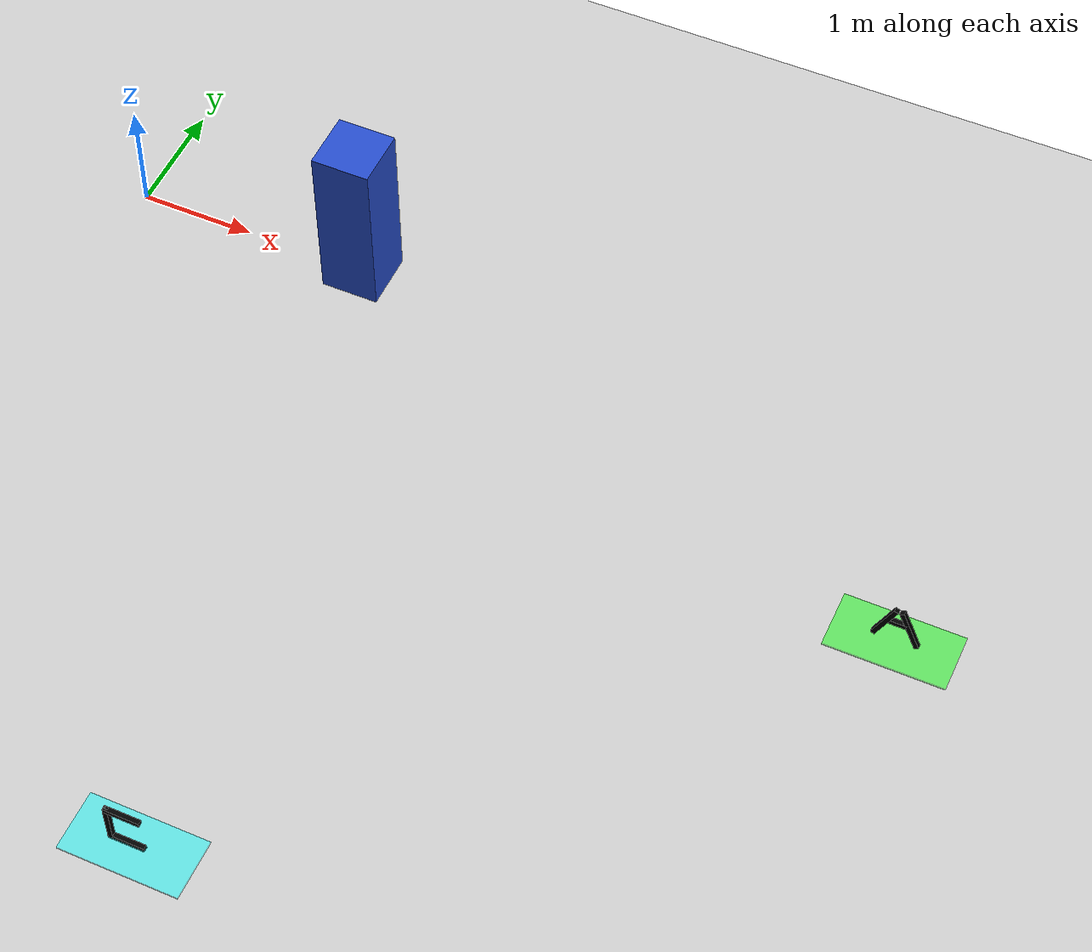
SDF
<sdf version="1.7">
 <world name="default">
  <model name="ground_plane">
   <static>1</static>
   <link name="link">
    <collision name="collision">
     <geometry><plane><normal>0 0 1</normal><size>100 100</size></plane></geometry>
     <surface><friction><ode><mu>100</mu><mu2>100</mu2></ode></friction></surface>
    </collision>
    <visual name="visual">
     <cast_shadows>0</cast_shadows>
     <geometry><plane><normal>0 0 1</normal><size>100 100</size></plane></geometry>
     <material>
      <script><uri>file://media/materials/scripts/gazebo.material</uri><name>Gazebo/Grey</name></script>
     </material>
    </visual>
    <velocity_decay><linear>0</linear><angular>0</angular></velocity_decay>
   </link>
  </model>
  <model name="Move2">
   <pose>2.07516 -0.000857 0.751454 0.001145 -0.005751 -2.6e-05</pose>
   <link name="link">
    <collision name="collision"><geometry><box><size>0.5 0.5 1.5</size></box></geometry></collision>
    <visual name="visual">
     <geometry><box><size>0.5 0.5 1.5</size></box></geometry>
     <material>
      <script><name>Blue</name><uri>file://media/materials/scripts/gazebo.material</uri></script>
     </material>
    </visual>
    <inertial>
     <inertia><ixx>1</ixx><ixy>0</ixy><ixz>0</ixz><iyy>1</iyy><iyz>0</iyz><izz>1</izz></inertia>
     <mass>1</mass>
    </inertial>
   </link>
   <plugin name="move2_plugin" filename="/home/ros/dev_ws/src/yzbot/mybot_description/worlds/libanimated_Move.so"/>
  </model>
  <model name="zone_a">
   <static>1</static>
   <pose>7.43891 -1.6523 0.01 0 -0 0</pose>
   <link name="base">
    <visual name="visual">
     <geometry><box><size>1 0.5 0.02</size></box></geometry>
     <material><ambient>0 1 0 0.5</ambient><diffuse>0 1 0 0.5</diffuse></material>
    </visual>
   </link>
   <link name="letter_A_1">
    <pose>-0.1 0 0.22 0 0.4 0</pose>
    <visual name="v">
     <geometry><box><size>0.04 0.04 0.4</size></box></geometry>
     <material><ambient>0 0 0 1</ambient><diffuse>0 0 0 1</diffuse></material>
    </visual>
   </link>
   <link name="letter_A_2">
    <pose>0.1 0 0.22 0 -0.4 0</pose>
    <visual name="v">
     <geometry><box><size>0.04 0.04 0.4</size></box></geometry>
     <material><ambient>0 0 0 1</ambient><diffuse>0 0 0 1</diffuse></material>
    </visual>
   </link>
   <link name="letter_A_3">
    <pose>0 0 0.25 0 -0 0</pose>
    <visual name="v">
     <geometry><box><size>0.15 0.04 0.04</size></box></geometry>
     <material><ambient>0 0 0 1</ambient><diffuse>0 0 0 1</diffuse></material>
    </visual>
   </link>
  </model>
  <model name="zone_c">
   <static>1</static>
   <pose>3.02108 -5.6094 0.01 0 -0 0</pose>
   <link name="base">
    <visual name="visual">
     <geometry><box><size>1 0.5 0.02</size></box></geometry>
     <material><ambient>0 1 1 0.5</ambient><diffuse>0 1 1 0.5</diffuse></material>
    </visual>
   </link>
   <link name="letter_C_1">
    <pose>-0.05 0 0.38 0 -0 0</pose>
    <visual name="v">
     <geometry><box><size>0.3 0.04 0.04</size></box></geometry>
     <material><ambient>0 0 0 1</ambient><diffuse>0 0 0 1</diffuse></material>
    </visual>
   </link>
   <link name="letter_C_2">
    <pose>-0.05 0 0.02 0 -0 0</pose>
    <visual name="v">
     <geometry><box><size>0.3 0.04 0.04</size></box></geometry>
     <material><ambient>0 0 0 1</ambient><diffuse>0 0 0 1</diffuse></material>
    </visual>
   </link>
   <link name="letter_C_3">
    <pose>-0.18 0 0.2 0 -0 0</pose>
    <visual name="v">
     <geometry><box><size>0.04 0.04 0.4</size></box></geometry>
     <material><ambient>0 0 0 1</ambient><diffuse>0 0 0 1</diffuse></material>
    </visual>
   </link>
  </model>
 </world>
</sdf>
